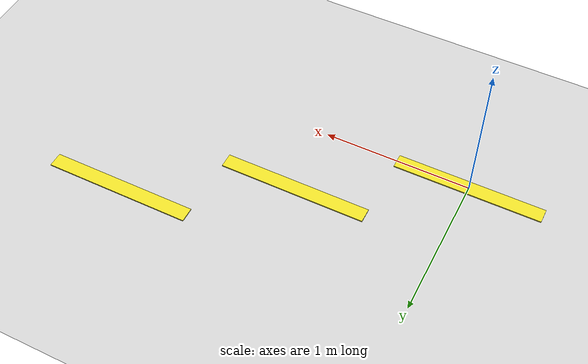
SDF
<?xml version="1.0" ?>
<sdf version="1.6">
  <world name="default">
    <!-- Include the ground plane -->
    <include>
      <uri>model://ground_plane</uri>
    </include>

    <!-- Include the sun -->
    <include>
      <uri>model://sun</uri>
    </include>

    <!-- Multiple boxes to form a curved yellow path -->
    <model name="curved_path">
      <static>true</static>
      <link name="path_link">
        <!-- Box 1 -->
        <visual name="visual1">
          <pose>0 0 0 0 0 0</pose>
          <geometry>
            <box>
              <size>1 0.1 0.01</size>
            </box>
          </geometry>
          <material>
            <script>
              <uri>file://media/materials/scripts/gazebo.material</uri>
              <name>Gazebo/Yellow</name>
            </script>
          </material>
        </visual>
        <!-- Box 2 -->
        <visual name="visual2">
          <pose>1 0.5 0 0 0 0</pose>
          <geometry>
            <box>
              <size>1 0.1 0.01</size>
            </box>
          </geometry>
          <material>
            <script>
              <uri>file://media/materials/scripts/gazebo.material</uri>
              <name>Gazebo/Yellow</name>
            </script>
          </material>
        </visual>
        <!-- Box 3 -->
        <visual name="visual3">
          <pose>2 1 0 0 0 0</pose>
          <geometry>
            <box>
              <size>1 0.1 0.01</size>
            </box>
          </geometry>
          <material>
            <script>
              <uri>file://media/materials/scripts/gazebo.material</uri>
              <name>Gazebo/Yellow</name>
            </script>
          </material>
        </visual>
        <!-- Continue to add more boxes as needed to form the path -->
      </link>
    </model>
  </world>
</sdf>
